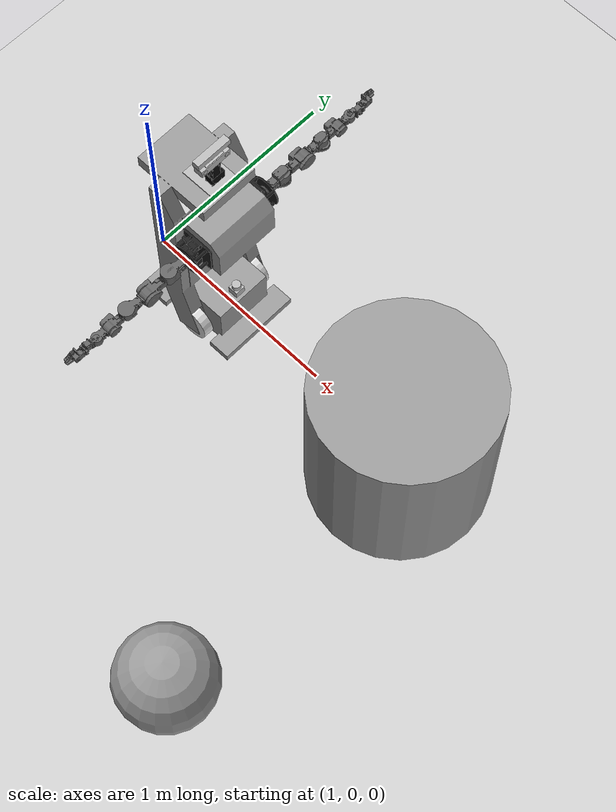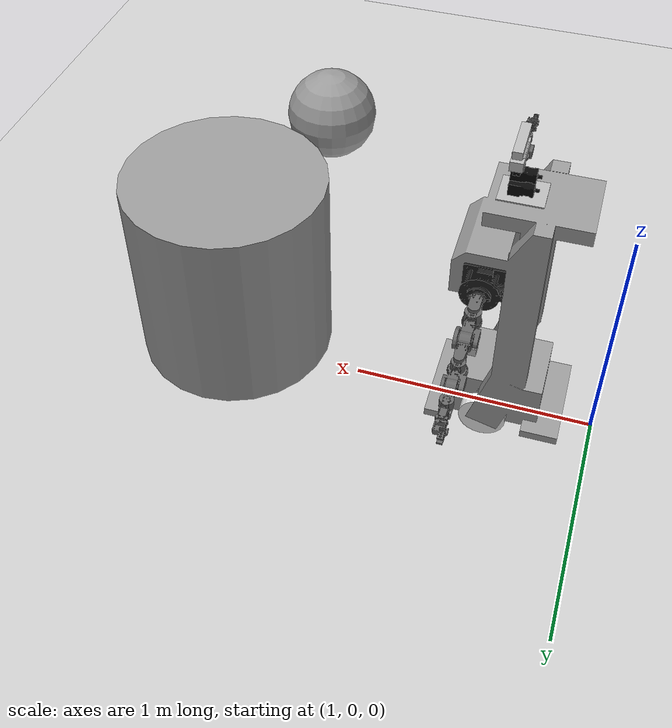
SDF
<sdf version="1.6">
 <world name="default">
  <light name="sun" type="directional">
   <pose>0 0 10 0 -0 0</pose>
   <diffuse>0.8 0.8 0.8 1</diffuse>
   <specular>0.2 0.2 0.2 1</specular>
   <attenuation>
    <range>1000</range>
    <constant>0.9</constant>
    <linear>0.01</linear>
    <quadratic>0.001</quadratic>
   </attenuation>
   <direction>-0.5 0.1 -0.9</direction>
  </light>
  <model name="ground_plane">
   <static>1</static>
   <link name="link">
    <collision name="collision">
     <geometry><plane><normal>0 0 1</normal><size>100 100</size></plane></geometry>
     <surface>
      <contact><collide_bitmask>65535</collide_bitmask></contact>
      <friction><ode><mu>100</mu><mu2>50</mu2></ode></friction>
     </surface>
    </collision>
    <visual name="visual">
     <cast_shadows>0</cast_shadows>
     <geometry><plane><normal>0 0 1</normal><size>100 100</size></plane></geometry>
     <material>
      <script><uri>file://media/materials/scripts/gazebo.material</uri><name>Gazebo/Grey</name></script>
     </material>
    </visual>
   </link>
  </model>
  <gravity>0 0 -9.8</gravity>
  <magnetic_field>6e-06 2.3e-05 -4.2e-05</magnetic_field>
  <atmosphere type="adiabatic"/>
  <physics name="default_physics" default="0" type="ode">
   <max_step_size>0.001</max_step_size>
   <real_time_factor>1</real_time_factor>
   <real_time_update_rate>1000</real_time_update_rate>
  </physics>
  <scene><ambient>0.4 0.4 0.4 1</ambient><background>0.7 0.7 0.7 1</background><shadows>1</shadows></scene>
  <spherical_coordinates>
   <surface_model>EARTH_WGS84</surface_model>
   <latitude_deg>0</latitude_deg>
   <longitude_deg>0</longitude_deg>
   <elevation>0</elevation>
   <heading_deg>0</heading_deg>
  </spherical_coordinates>
  <model name="phoebe">
   <link name="base_link">
    <inertial>
     <pose>-0.030986 0 0.583426 0 -0 0</pose>
     <mass>13.2871</mass>
     <inertia>
      <ixx>1.57998</ixx>
      <ixy>7.56683e-09</ixy>
      <ixz>-0.0224516</ixz>
      <iyy>1.63787</iyy>
      <iyz>0</iyz>
      <izz>0.44973</izz>
     </inertia>
    </inertial>
    <collision name="base_link_collision">
     <geometry>
      <mesh>
       <scale>1 1 1</scale>
       <uri>/home/qasim/catkin_ws/src/mypb-robot/pb-robot/phoebe_description/meshes/phoebe.dae</uri>
      </mesh>
     </geometry>
     <surface>
      <contact><ode><kp>1e+13</kp><kd>1</kd></ode></contact>
      <friction><ode><mu>1</mu><mu2>10</mu2></ode></friction>
     </surface>
    </collision>
    <collision name="base_link_fixed_joint_lump__hokuyo_link_collision_1">
     <pose>0.1 0 0.3 0 -0 0</pose>
     <geometry><cylinder><length>0.0265</length><radius>0.021</radius></cylinder></geometry>
    </collision>
    <collision name="base_link_fixed_joint_lump__hokuyo_link_collision_2">
     <pose>0.1 0 0.253 0 -0 0</pose>
     <geometry><box><size>0.05 0.05 0.041</size></box></geometry>
    </collision>
    <collision name="base_link_fixed_joint_lump__left_arm_base_link_collision_3">
     <pose>0.0555 0.209 0.8 1.57079 1.57079 3.14159</pose>
     <geometry><box><size>0.154 0.177 0.094</size></box></geometry>
     <surface>
      <contact><ode><kp>1e+13</kp><kd>1</kd></ode></contact>
      <friction><ode><mu>1</mu><mu2>10</mu2></ode></friction>
     </surface>
    </collision>
    <collision name="base_link_fixed_joint_lump__ptu_pan_link_collision_4">
     <pose>0.02 0.0115 1.1595 0 -0 0</pose>
     <geometry><box><size>0.154 0.177 0.094</size></box></geometry>
    </collision>
    <collision name="base_link_fixed_joint_lump__right_arm_base_link_collision_5">
     <pose>0.0555 -0.209 0.8 -1.57079 -1.57079 3.14159</pose>
     <geometry><box><size>0.154 0.177 0.094</size></box></geometry>
     <surface>
      <contact><ode><kp>1e+13</kp><kd>1</kd></ode></contact>
      <friction><ode><mu>1</mu><mu2>10</mu2></ode></friction>
     </surface>
    </collision>
    <visual name="base_link_visual">
     <geometry>
      <mesh>
       <scale>1 1 1</scale>
       <uri>/home/qasim/catkin_ws/src/mypb-robot/pb-robot/phoebe_description/meshes/phoebe.dae</uri>
      </mesh>
     </geometry>
     <material>
      <script><name>Gazebo/Grey</name><uri>file://media/materials/scripts/gazebo.material</uri></script>
     </material>
    </visual>
    <visual name="base_link_fixed_joint_lump__hokuyo_link_visual_1">
     <pose>0.1 0 0.3 0 -0 0</pose>
     <geometry><cylinder><length>0.0265</length><radius>0.021</radius></cylinder></geometry>
     <material><script><uri>__default__</uri><name>__default__</name></script></material>
    </visual>
    <visual name="base_link_fixed_joint_lump__hokuyo_link_visual_2">
     <pose>0.1 0 0.266 0 -0 0</pose>
     <geometry><box><size>0.05 0.05 0.041</size></box></geometry>
     <material><script><uri>__default__</uri><name>__default__</name></script></material>
    </visual>
    <visual name="base_link_fixed_joint_lump__left_arm_base_link_visual_3">
     <pose>0.067 0.162 0.8 1.57079 1.57079 3.14159</pose>
     <geometry>
      <mesh>
       <scale>1 1 1</scale>
       <uri>/home/qasim/catkin_ws/src/cyton_gamma_1500_description/meshes/base.dae</uri>
      </mesh>
     </geometry>
     <material>
      <script><name>Gazebo/Black</name><uri>file://media/materials/scripts/gazebo.material</uri></script>
     </material>
    </visual>
    <visual name="base_link_fixed_joint_lump__ptu_base_plate_link_visual_4">
     <pose>-0.015 0 1.11 0 -0 0</pose>
     <geometry><box><size>0.17 0.142 0.005</size></box></geometry>
    </visual>
    <visual name="base_link_fixed_joint_lump__ptu_pan_link_visual_5">
     <pose>0.02 0 1.1375 0 -0 0</pose>
     <geometry>
      <mesh>
       <scale>1 1 1</scale>
       <uri>/home/qasim/catkin_ws/src/mypb-robot/pb-robot/dp_ptu_46_description/meshes/pan.dae</uri>
      </mesh>
     </geometry>
    </visual>
    <visual name="base_link_fixed_joint_lump__right_arm_base_link_visual_6">
     <pose>0.067 -0.162 0.8 -1.57079 -1.57079 3.14159</pose>
     <geometry>
      <mesh>
       <scale>1 1 1</scale>
       <uri>/home/qasim/catkin_ws/src/cyton_gamma_1500_description/meshes/base.dae</uri>
      </mesh>
     </geometry>
     <material>
      <script><name>Gazebo/Black</name><uri>file://media/materials/scripts/gazebo.material</uri></script>
     </material>
    </visual>
    <sensor name="head_hokuyo_sensor" type="ray">
     <visualize>0</visualize>
     <update_rate>20</update_rate>
     <ray>
      <scan>
       <horizontal>
        <samples>720</samples>
        <resolution>1</resolution>
        <min_angle>-1.5708</min_angle>
        <max_angle>1.5708</max_angle>
       </horizontal>
       <vertical><samples>1</samples><min_angle>0</min_angle><max_angle>0</max_angle></vertical>
      </scan>
      <range><min>0.1</min><max>30</max><resolution>0.01</resolution></range>
      <noise><type>gaussian</type><mean>0</mean><stddev>0.01</stddev></noise>
     </ray>
     <plugin name="gazebo_ros_head_hokuyo_controller" filename="libgazebo_ros_laser.so">
      <topicName>/phoebe/laser/scan</topicName>
      <frameName>hokuyo_link</frameName>
      <robotNamespace>/</robotNamespace>
     </plugin>
     <pose>0.1 0 0.3 0 -0 0</pose>
    </sensor>
   </link>
   <link name="left_arm_shoulder_roll">
    <pose>0.067 0.21515 0.8 1.57079 1.57079 3.14159</pose>
    <inertial>
     <pose>0 0 0.12 0 -0 0</pose>
     <mass>0.468571</mass>
     <inertia><ixx>0.00047</ixx><ixy>0</ixy><ixz>0</ixz><iyy>0.00057</iyy><iyz>0</iyz><izz>0.00057</izz></inertia>
    </inertial>
    <collision name="left_arm_shoulder_roll_collision">
     <pose>0 0.069 0.0587 0 -0 0</pose>
     <geometry><box><size>0.09829 0.18143 0.08392</size></box></geometry>
    </collision>
    <visual name="left_arm_shoulder_roll_visual">
     <pose>0 0 0 1.5708 -0 0.384</pose>
     <geometry>
      <mesh>
       <scale>1 1 1</scale>
       <uri>/home/qasim/catkin_ws/src/cyton_gamma_1500_description/meshes/shoulder_roll.dae</uri>
      </mesh>
     </geometry>
    </visual>
   </link>
   <joint name="left_arm_shoulder_roll_joint" type="revolute">
    <child>left_arm_shoulder_roll</child>
    <parent>base_link</parent>
    <axis>
     <xyz>-4e-06 1 0</xyz>
     <limit><lower>-2.618</lower><upper>2.618</upper><effort>100</effort><velocity>1</velocity></limit>
     <dynamics><spring_reference>0</spring_reference><spring_stiffness>0</spring_stiffness></dynamics>
     <use_parent_model_frame>1</use_parent_model_frame>
    </axis>
   </joint>
   <link name="left_arm_shoulder_pitch">
    <pose>0.066999 0.3395 0.7795 1.57079 1.57079 3.14159</pose>
    <inertial>
     <mass>0.428571</mass>
     <inertia><ixx>0.00049</ixx><ixy>0</ixy><ixz>0</ixz><iyy>0.00038</iyy><iyz>0</iyz><izz>0.00049</izz></inertia>
    </inertial>
    <collision name="left_arm_shoulder_pitch_collision">
     <pose>-0.02 0 0 0 -0 0</pose>
     <geometry><sphere><radius>0.055</radius></sphere></geometry>
    </collision>
    <visual name="left_arm_shoulder_pitch_visual">
     <pose>0 0 0 1.5708 -0 0</pose>
     <geometry>
      <mesh>
       <scale>1 1 1</scale>
       <uri>/home/qasim/catkin_ws/src/cyton_gamma_1500_description/meshes/shoulder_pitch.dae</uri>
      </mesh>
     </geometry>
    </visual>
   </link>
   <joint name="left_arm_shoulder_pitch_joint" type="revolute">
    <child>left_arm_shoulder_pitch</child>
    <parent>left_arm_shoulder_roll</parent>
    <axis>
     <xyz>-4e-06 0 -1</xyz>
     <limit><lower>-1.8326</lower><upper>1.8326</upper><effort>100</effort><velocity>1</velocity></limit>
     <dynamics><spring_reference>0</spring_reference><spring_stiffness>0</spring_stiffness></dynamics>
     <use_parent_model_frame>1</use_parent_model_frame>
    </axis>
   </joint>
   <link name="left_arm_shoulder_yaw">
    <pose>0.087499 0.465 0.801 1.57079 1.57079 3.14159</pose>
    <inertial>
     <mass>0.408571</mass>
     <inertia><ixx>0.00028</ixx><ixy>0</ixy><ixz>0</ixz><iyy>0.00038</iyy><iyz>0</iyz><izz>0.00038</izz></inertia>
    </inertial>
    <collision name="left_arm_shoulder_yaw_collision">
     <pose>-0.002 0.02 -0.01 0 -0 0</pose>
     <geometry><sphere><radius>0.055</radius></sphere></geometry>
    </collision>
    <visual name="left_arm_shoulder_yaw_visual">
     <pose>0 0 0 1.5708 0 -1.5708</pose>
     <geometry>
      <mesh>
       <scale>1 1 1</scale>
       <uri>/home/qasim/catkin_ws/src/cyton_gamma_1500_description/meshes/shoulder_yaw.dae</uri>
      </mesh>
     </geometry>
    </visual>
   </link>
   <joint name="left_arm_shoulder_yaw_joint" type="revolute">
    <child>left_arm_shoulder_yaw</child>
    <parent>left_arm_shoulder_pitch</parent>
    <axis>
     <xyz>1 4e-06 -4e-06</xyz>
     <limit><lower>-1.8326</lower><upper>1.8326</upper><effort>100</effort><velocity>1</velocity></limit>
     <dynamics><spring_reference>0</spring_reference><spring_stiffness>0</spring_stiffness></dynamics>
     <use_parent_model_frame>1</use_parent_model_frame>
    </axis>
   </joint>
   <link name="left_arm_elbow_pitch">
    <pose>0.066898 0.5808 0.783 1.57079 1.57079 3.14159</pose>
    <inertial>
     <mass>0.388671</mass>
     <inertia><ixx>0.00023</ixx><ixy>0</ixy><ixz>0</ixz><iyy>0.00016</iyy><iyz>0</iyz><izz>0.00023</izz></inertia>
    </inertial>
    <collision name="left_arm_elbow_pitch_collision">
     <pose>-0.022 0 -0.006 0 -0 0</pose>
     <geometry><sphere><radius>0.055</radius></sphere></geometry>
    </collision>
    <visual name="left_arm_elbow_pitch_visual">
     <pose>0 0 0 1.5708 -0 -3.14159</pose>
     <geometry>
      <mesh>
       <scale>1 1 1</scale>
       <uri>/home/qasim/catkin_ws/src/cyton_gamma_1500_description/meshes/elbow_pitch.dae</uri>
      </mesh>
     </geometry>
    </visual>
   </link>
   <joint name="left_arm_elbow_pitch_joint" type="revolute">
    <child>left_arm_elbow_pitch</child>
    <parent>left_arm_shoulder_yaw</parent>
    <axis>
     <xyz>-4e-06 0 -1</xyz>
     <limit><lower>-1.8326</lower><upper>1.8326</upper><effort>100</effort><velocity>1</velocity></limit>
     <dynamics><spring_reference>0</spring_reference><spring_stiffness>0</spring_stiffness></dynamics>
     <use_parent_model_frame>1</use_parent_model_frame>
    </axis>
   </joint>
   <link name="left_arm_elbow_yaw">
    <pose>0.084898 0.67826 0.8001 1.57079 1.57079 3.14159</pose>
    <inertial>
     <mass>0.368871</mass>
     <inertia>
      <ixx>0.00010686</ixx>
      <ixy>0</ixy>
      <ixz>0</ixz>
      <iyy>0.00011187</iyy>
      <iyz>0</iyz>
      <izz>0.00011187</izz>
     </inertia>
    </inertial>
    <collision name="left_arm_elbow_yaw_collision">
     <pose>0 0.025 0 0 -0 0</pose>
     <geometry><sphere><radius>0.05</radius></sphere></geometry>
    </collision>
    <visual name="left_arm_elbow_yaw_visual">
     <pose>0 0 0 1.5708 -0 1.5708</pose>
     <geometry>
      <mesh>
       <scale>1 1 1</scale>
       <uri>/home/qasim/catkin_ws/src/cyton_gamma_1500_description/meshes/elbow_yaw.dae</uri>
      </mesh>
     </geometry>
    </visual>
   </link>
   <joint name="left_arm_elbow_yaw_joint" type="revolute">
    <child>left_arm_elbow_yaw</child>
    <parent>left_arm_elbow_pitch</parent>
    <axis>
     <xyz>1 4e-06 -4e-06</xyz>
     <limit><lower>-1.8326</lower><upper>1.8326</upper><effort>100</effort><velocity>1</velocity></limit>
     <dynamics><spring_reference>0</spring_reference><spring_stiffness>0</spring_stiffness></dynamics>
     <use_parent_model_frame>1</use_parent_model_frame>
    </axis>
   </joint>
   <link name="left_arm_wrist_pitch">
    <pose>0.066898 0.75006 0.77384 1.57079 1.57079 3.14159</pose>
    <inertial>
     <mass>0.008</mass>
     <inertia>
      <ixx>3.3349e-07</ixx>
      <ixy>0</ixy>
      <ixz>0</ixz>
      <iyy>1.403e-06</iyy>
      <iyz>0</iyz>
      <izz>1.70319e-06</izz>
     </inertia>
    </inertial>
    <collision name="left_arm_wrist_pitch_collision">
     <pose>-0.02 0 0 0 -0 0</pose>
     <geometry><box><size>0.07 0.06 0.11</size></box></geometry>
    </collision>
    <visual name="left_arm_wrist_pitch_visual">
     <pose>0 0 0 1.5708 -0 1.5708</pose>
     <geometry>
      <mesh>
       <scale>1 1 1</scale>
       <uri>/home/qasim/catkin_ws/src/cyton_gamma_1500_description/meshes/wrist_pitch.dae</uri>
      </mesh>
     </geometry>
    </visual>
   </link>
   <joint name="left_arm_wrist_pitch_joint" type="revolute">
    <child>left_arm_wrist_pitch</child>
    <parent>left_arm_elbow_yaw</parent>
    <axis>
     <xyz>4e-06 0 1</xyz>
     <limit><lower>-1.8326</lower><upper>1.8326</upper><effort>100</effort><velocity>1</velocity></limit>
     <dynamics><spring_reference>0</spring_reference><spring_stiffness>0</spring_stiffness></dynamics>
     <use_parent_model_frame>1</use_parent_model_frame>
    </axis>
   </joint>
   <link name="left_arm_wrist_roll">
    <pose>0.066898 0.801485 0.800095 1.57079 1.57079 3.14159</pose>
    <inertial>
     <mass>0.38</mass>
     <inertia>
      <ixx>0.00036</ixx>
      <ixy>0</ixy>
      <ixz>0</ixz>
      <iyy>0.00036</iyy>
      <iyz>0</iyz>
      <izz>0.0001487</izz>
     </inertia>
    </inertial>
    <collision name="left_arm_wrist_roll_collision">
     <pose>0 0.008 0.04 0 -0 0</pose>
     <geometry><box><size>0.08 0.06 0.08</size></box></geometry>
    </collision>
    <visual name="left_arm_wrist_roll_visual">
     <pose>0 0 0 -3.14159 -0 -1.5708</pose>
     <geometry>
      <mesh>
       <scale>1 1 1</scale>
       <uri>/home/qasim/catkin_ws/src/cyton_gamma_1500_description/meshes/wrist_roll.dae</uri>
      </mesh>
     </geometry>
    </visual>
    <visual name="left_arm_wrist_roll_fixed_joint_lump__left_arm_virtual_endeffector_visual_1">
     <pose>-0.002316 0.0079 0.079425 0 -0 0</pose>
     <geometry><sphere><radius>0.002</radius></sphere></geometry>
    </visual>
   </link>
   <joint name="left_arm_wrist_roll_joint" type="revolute">
    <child>left_arm_wrist_roll</child>
    <parent>left_arm_wrist_pitch</parent>
    <axis>
     <xyz>-4e-06 1 0</xyz>
     <limit><lower>-2.61799</lower><upper>2.61799</upper><effort>100</effort><velocity>1</velocity></limit>
     <dynamics><spring_reference>0</spring_reference><spring_stiffness>0</spring_stiffness></dynamics>
     <use_parent_model_frame>1</use_parent_model_frame>
    </axis>
   </joint>
   <link name="left_arm_gripper_finger1">
    <pose>0.062047 0.87871 0.813405 1.57079 1.57079 3.14159</pose>
    <inertial>
     <mass>0.035</mass>
     <inertia>
      <ixx>4.5064e-06</ixx>
      <ixy>0</ixy>
      <ixz>0</ixz>
      <iyy>3.6723e-06</iyy>
      <iyz>0</iyz>
      <izz>2.0929e-06</izz>
     </inertia>
    </inertial>
    <collision name="left_arm_gripper_finger1_collision">
     <pose>0 0.008 0.04 0 -0 0</pose>
     <geometry><box><size>0.015 0.0229 0.0475</size></box></geometry>
    </collision>
    <visual name="left_arm_gripper_finger1_visual">
     <geometry>
      <mesh>
       <scale>1 1 1</scale>
       <uri>/home/qasim/catkin_ws/src/cyton_gamma_1500_description/meshes/gripper_finger1.dae</uri>
      </mesh>
     </geometry>
    </visual>
   </link>
   <joint name="left_arm_gripper_joint" type="prismatic">
    <child>left_arm_gripper_finger1</child>
    <parent>left_arm_wrist_roll</parent>
    <axis>
     <xyz>-4e-06 0 -1</xyz>
     <limit><lower>-0.008</lower><upper>0.008</upper><effort>100</effort><velocity>1</velocity></limit>
     <dynamics><spring_reference>0</spring_reference><spring_stiffness>0</spring_stiffness></dynamics>
     <use_parent_model_frame>1</use_parent_model_frame>
    </axis>
   </joint>
   <link name="left_arm_gripper_finger2">
    <pose>0.062047 0.87871 0.790295 1.57079 1.57079 3.14159</pose>
    <inertial>
     <mass>0.035</mass>
     <inertia>
      <ixx>4.5064e-06</ixx>
      <ixy>0</ixy>
      <ixz>0</ixz>
      <iyy>3.6723e-06</iyy>
      <iyz>0</iyz>
      <izz>2.0929e-06</izz>
     </inertia>
    </inertial>
    <collision name="left_arm_gripper_finger2_collision">
     <pose>0 0.008 0.04 0 -0 0</pose>
     <geometry><box><size>0.015 0.0229 0.0475</size></box></geometry>
    </collision>
    <visual name="left_arm_gripper_finger2_visual">
     <geometry>
      <mesh>
       <scale>1 1 1</scale>
       <uri>/home/qasim/catkin_ws/src/cyton_gamma_1500_description/meshes/gripper_finger2.dae</uri>
      </mesh>
     </geometry>
    </visual>
   </link>
   <joint name="left_arm_gripper_joint2" type="prismatic">
    <child>left_arm_gripper_finger2</child>
    <parent>left_arm_wrist_roll</parent>
    <axis>
     <xyz>-4e-06 0 -1</xyz>
     <limit><lower>-0.008</lower><upper>0.008</upper><effort>100</effort><velocity>1</velocity></limit>
     <dynamics><spring_reference>0</spring_reference><spring_stiffness>0</spring_stiffness></dynamics>
     <use_parent_model_frame>1</use_parent_model_frame>
    </axis>
   </joint>
   <link name="ptu_tilt_link">
    <pose>0.01564 -0.0067 1.1375 0 -0 0</pose>
    <inertial>
     <pose>-0.03 0 0.05 0 -0 0</pose>
     <mass>0.13</mass>
     <inertia>
      <ixx>7.6006e-05</ixx>
      <ixy>0</ixy>
      <ixz>0</ixz>
      <iyy>0.00017252</iyy>
      <iyz>0</iyz>
      <izz>0.00014136</izz>
     </inertia>
    </inertial>
    <collision name="ptu_tilt_link_collision">
     <pose>0 0.0115 0.047 0 -0 0</pose>
     <geometry><box><size>0.154 0.177 0.094</size></box></geometry>
    </collision>
    <visual name="ptu_tilt_link_visual">
     <pose>0.00436 0.0067 0 0 -0 0</pose>
     <geometry>
      <mesh>
       <scale>1 1 1</scale>
       <uri>/home/qasim/catkin_ws/src/mypb-robot/pb-robot/dp_ptu_46_description/meshes/tilt.dae</uri>
      </mesh>
     </geometry>
    </visual>
   </link>
   <joint name="ptu_pan_joint" type="revolute">
    <child>ptu_tilt_link</child>
    <parent>base_link</parent>
    <axis>
     <xyz>0 0 1</xyz>
     <limit><lower>-2.775</lower><upper>2.775</upper><effort>100</effort><velocity>1</velocity></limit>
     <dynamics><spring_reference>0</spring_reference><spring_stiffness>0</spring_stiffness></dynamics>
     <use_parent_model_frame>1</use_parent_model_frame>
    </axis>
   </joint>
   <link name="ptu_mount_link">
    <pose>0.01564 -0.0067 1.2034 0 -0 0</pose>
    <inertial>
     <pose>0 0 0.091674 0 -0 0</pose>
     <mass>0.882</mass>
     <inertia>
      <ixx>0.00288283</ixx>
      <ixy>0</ixy>
      <ixz>0</ixz>
      <iyy>0.000838398</iyy>
      <iyz>0</iyz>
      <izz>0.00227653</izz>
     </inertia>
    </inertial>
    <collision name="ptu_mount_link_collision">
     <pose>0 0.0115 0.047 0 -0 0</pose>
     <geometry><box><size>0.154 0.177 0.094</size></box></geometry>
    </collision>
    <visual name="ptu_mount_link_visual">
     <pose>0.00436 0.0067 -0.0659 0 -0 0</pose>
     <geometry>
      <mesh>
       <scale>1 1 1</scale>
       <uri>/home/qasim/catkin_ws/src/mypb-robot/pb-robot/dp_ptu_46_description/meshes/mount.dae</uri>
      </mesh>
     </geometry>
    </visual>
    <visual name="ptu_mount_link_fixed_joint_lump__bumblebee_link_visual_1">
     <pose>0 0 0.058 0 -0 0</pose>
     <geometry><box><size>0.047 0.157 0.038</size></box></geometry>
    </visual>
    <visual name="ptu_mount_link_fixed_joint_lump__bumblebee_cameras_link_visual_2">
     <pose>0.024 0.06 0.058 3.14159 1.57079 3.14159</pose>
     <geometry><cylinder><length>0.001</length><radius>0.011</radius></cylinder></geometry>
    </visual>
    <visual name="ptu_mount_link_fixed_joint_lump__bumblebee_cameras_link_visual_3">
     <pose>0.024 -0.06 0.058 3.14159 1.57079 3.14159</pose>
     <geometry><cylinder><length>0.001</length><radius>0.011</radius></cylinder></geometry>
    </visual>
    <visual name="ptu_mount_link_fixed_joint_lump__xtion_link_visual_4">
     <pose>0 0 0.113 0 -0 0</pose>
     <geometry><box><size>0.036 0.178 0.03</size></box></geometry>
     <material><script><uri>__default__</uri><name>__default__</name></script></material>
    </visual>
    <visual name="ptu_mount_link_fixed_joint_lump__xtion_link_visual_5">
     <pose>0 0 0.088 0 -0 0</pose>
     <geometry><box><size>0.02 0.017 0.02</size></box></geometry>
     <material><script><uri>__default__</uri><name>__default__</name></script></material>
    </visual>
    <visual name="ptu_mount_link_fixed_joint_lump__xtion_link_visual_6">
     <pose>0 0 0.078 0 -0 0</pose>
     <geometry><box><size>0.04 0.1 0.004</size></box></geometry>
     <material><script><uri>__default__</uri><name>__default__</name></script></material>
    </visual>
    <sensor name="xtion_link_camera" type="depth">
     <update_rate>30</update_rate>
     <camera name="__default__">
      <horizontal_fov>1.01229</horizontal_fov>
      <image><width>640</width><height>480</height><format>R8G8B8</format></image>
      <clip><near>0.08</near><far>3.5</far></clip>
     </camera>
     <plugin name="xtion_link_controller" filename="libgazebo_ros_openni_kinect.so">
      <baseline>0.2</baseline>
      <alwaysOn>true</alwaysOn>
      <updateRate>0.0</updateRate>
      <cameraName>xtion_ir</cameraName>
      <imageTopicName>/phoebe/color/image_raw</imageTopicName>
      <cameraInfoTopicName>/phoebe/color/camera_info</cameraInfoTopicName>
      <depthImageTopicName>/phoebe/depth/image_raw</depthImageTopicName>
      <depthImageInfoTopicName>/phoebe/depth/camera_info</depthImageInfoTopicName>
      <pointCloudTopicName>/phoebe/depth/points</pointCloudTopicName>
      <frameName>xtion_link</frameName>
      <pointCloudCutoff>0.5</pointCloudCutoff>
      <pointCloudCutoffMax>3.0</pointCloudCutoffMax>
      <distortionK1>0.00000001</distortionK1>
      <distortionK2>0.00000001</distortionK2>
      <distortionK3>0.00000001</distortionK3>
      <distortionT1>0.00000001</distortionT1>
      <distortionT2>0.00000001</distortionT2>
      <CxPrime>0</CxPrime>
      <Cx>0</Cx>
      <Cy>0</Cy>
      <focalLength>0</focalLength>
      <hackBaseline>0</hackBaseline>
      <robotNamespace>/</robotNamespace>
     </plugin>
     <pose>0 0 0.113 0 -0 0</pose>
    </sensor>
   </link>
   <joint name="ptu_tilt_joint" type="revolute">
    <child>ptu_mount_link</child>
    <parent>ptu_tilt_link</parent>
    <axis>
     <xyz>0 -1 0</xyz>
     <limit><lower>-1.396</lower><upper>0.541</upper><effort>100</effort><velocity>1</velocity></limit>
     <dynamics><spring_reference>0</spring_reference><spring_stiffness>0</spring_stiffness></dynamics>
     <use_parent_model_frame>1</use_parent_model_frame>
    </axis>
   </joint>
   <link name="right_arm_shoulder_roll">
    <pose>0.067 -0.21515 0.8 -1.57079 -1.57079 3.14159</pose>
    <inertial>
     <pose>0 0 0.12 0 -0 0</pose>
     <mass>0.468571</mass>
     <inertia><ixx>0.00047</ixx><ixy>0</ixy><ixz>0</ixz><iyy>0.00057</iyy><iyz>0</iyz><izz>0.00057</izz></inertia>
    </inertial>
    <collision name="right_arm_shoulder_roll_collision">
     <pose>0 0.069 0.0587 0 -0 0</pose>
     <geometry><box><size>0.09829 0.18143 0.08392</size></box></geometry>
    </collision>
    <visual name="right_arm_shoulder_roll_visual">
     <pose>0 0 0 1.5708 -0 0.384</pose>
     <geometry>
      <mesh>
       <scale>1 1 1</scale>
       <uri>/home/qasim/catkin_ws/src/cyton_gamma_1500_description/meshes/shoulder_roll.dae</uri>
      </mesh>
     </geometry>
    </visual>
   </link>
   <joint name="right_arm_shoulder_roll_joint" type="revolute">
    <child>right_arm_shoulder_roll</child>
    <parent>base_link</parent>
    <axis>
     <xyz>4e-06 -1 0</xyz>
     <limit><lower>-2.618</lower><upper>2.618</upper><effort>100</effort><velocity>1</velocity></limit>
     <dynamics><spring_reference>0</spring_reference><spring_stiffness>0</spring_stiffness></dynamics>
     <use_parent_model_frame>1</use_parent_model_frame>
    </axis>
   </joint>
   <link name="right_arm_shoulder_pitch">
    <pose>0.067001 -0.3395 0.8205 -1.57079 -1.57079 3.14159</pose>
    <inertial>
     <mass>0.428571</mass>
     <inertia><ixx>0.00049</ixx><ixy>0</ixy><ixz>0</ixz><iyy>0.00038</iyy><iyz>0</iyz><izz>0.00049</izz></inertia>
    </inertial>
    <collision name="right_arm_shoulder_pitch_collision">
     <pose>-0.02 0 0 0 -0 0</pose>
     <geometry><sphere><radius>0.055</radius></sphere></geometry>
    </collision>
    <visual name="right_arm_shoulder_pitch_visual">
     <pose>0 0 0 1.5708 -0 0</pose>
     <geometry>
      <mesh>
       <scale>1 1 1</scale>
       <uri>/home/qasim/catkin_ws/src/cyton_gamma_1500_description/meshes/shoulder_pitch.dae</uri>
      </mesh>
     </geometry>
    </visual>
   </link>
   <joint name="right_arm_shoulder_pitch_joint" type="revolute">
    <child>right_arm_shoulder_pitch</child>
    <parent>right_arm_shoulder_roll</parent>
    <axis>
     <xyz>-4e-06 0 1</xyz>
     <limit><lower>-1.8326</lower><upper>1.8326</upper><effort>100</effort><velocity>1</velocity></limit>
     <dynamics><spring_reference>0</spring_reference><spring_stiffness>0</spring_stiffness></dynamics>
     <use_parent_model_frame>1</use_parent_model_frame>
    </axis>
   </joint>
   <link name="right_arm_shoulder_yaw">
    <pose>0.087501 -0.465 0.799 -1.57079 -1.57079 3.14159</pose>
    <inertial>
     <mass>0.408571</mass>
     <inertia><ixx>0.00028</ixx><ixy>0</ixy><ixz>0</ixz><iyy>0.00038</iyy><iyz>0</iyz><izz>0.00038</izz></inertia>
    </inertial>
    <collision name="right_arm_shoulder_yaw_collision">
     <pose>-0.002 0.02 -0.01 0 -0 0</pose>
     <geometry><sphere><radius>0.055</radius></sphere></geometry>
    </collision>
    <visual name="right_arm_shoulder_yaw_visual">
     <pose>0 0 0 1.5708 0 -1.5708</pose>
     <geometry>
      <mesh>
       <scale>1 1 1</scale>
       <uri>/home/qasim/catkin_ws/src/cyton_gamma_1500_description/meshes/shoulder_yaw.dae</uri>
      </mesh>
     </geometry>
    </visual>
   </link>
   <joint name="right_arm_shoulder_yaw_joint" type="revolute">
    <child>right_arm_shoulder_yaw</child>
    <parent>right_arm_shoulder_pitch</parent>
    <axis>
     <xyz>1 4e-06 4e-06</xyz>
     <limit><lower>-1.8326</lower><upper>1.8326</upper><effort>100</effort><velocity>1</velocity></limit>
     <dynamics><spring_reference>0</spring_reference><spring_stiffness>0</spring_stiffness></dynamics>
     <use_parent_model_frame>1</use_parent_model_frame>
    </axis>
   </joint>
   <link name="right_arm_elbow_pitch">
    <pose>0.066902 -0.5808 0.817 -1.57079 -1.57079 3.14159</pose>
    <inertial>
     <mass>0.388671</mass>
     <inertia><ixx>0.00023</ixx><ixy>0</ixy><ixz>0</ixz><iyy>0.00016</iyy><iyz>0</iyz><izz>0.00023</izz></inertia>
    </inertial>
    <collision name="right_arm_elbow_pitch_collision">
     <pose>-0.022 0 -0.006 0 -0 0</pose>
     <geometry><sphere><radius>0.055</radius></sphere></geometry>
    </collision>
    <visual name="right_arm_elbow_pitch_visual">
     <pose>0 0 0 1.5708 -0 -3.14159</pose>
     <geometry>
      <mesh>
       <scale>1 1 1</scale>
       <uri>/home/qasim/catkin_ws/src/cyton_gamma_1500_description/meshes/elbow_pitch.dae</uri>
      </mesh>
     </geometry>
    </visual>
   </link>
   <joint name="right_arm_elbow_pitch_joint" type="revolute">
    <child>right_arm_elbow_pitch</child>
    <parent>right_arm_shoulder_yaw</parent>
    <axis>
     <xyz>-4e-06 0 1</xyz>
     <limit><lower>-1.8326</lower><upper>1.8326</upper><effort>100</effort><velocity>1</velocity></limit>
     <dynamics><spring_reference>0</spring_reference><spring_stiffness>0</spring_stiffness></dynamics>
     <use_parent_model_frame>1</use_parent_model_frame>
    </axis>
   </joint>
   <link name="right_arm_elbow_yaw">
    <pose>0.084902 -0.67826 0.7999 -1.57079 -1.57079 3.14159</pose>
    <inertial>
     <mass>0.368871</mass>
     <inertia>
      <ixx>0.00010686</ixx>
      <ixy>0</ixy>
      <ixz>0</ixz>
      <iyy>0.00011187</iyy>
      <iyz>0</iyz>
      <izz>0.00011187</izz>
     </inertia>
    </inertial>
    <collision name="right_arm_elbow_yaw_collision">
     <pose>0 0.025 0 0 -0 0</pose>
     <geometry><sphere><radius>0.05</radius></sphere></geometry>
    </collision>
    <visual name="right_arm_elbow_yaw_visual">
     <pose>0 0 0 1.5708 -0 1.5708</pose>
     <geometry>
      <mesh>
       <scale>1 1 1</scale>
       <uri>/home/qasim/catkin_ws/src/cyton_gamma_1500_description/meshes/elbow_yaw.dae</uri>
      </mesh>
     </geometry>
    </visual>
   </link>
   <joint name="right_arm_elbow_yaw_joint" type="revolute">
    <child>right_arm_elbow_yaw</child>
    <parent>right_arm_elbow_pitch</parent>
    <axis>
     <xyz>1 4e-06 4e-06</xyz>
     <limit><lower>-1.8326</lower><upper>1.8326</upper><effort>100</effort><velocity>1</velocity></limit>
     <dynamics><spring_reference>0</spring_reference><spring_stiffness>0</spring_stiffness></dynamics>
     <use_parent_model_frame>1</use_parent_model_frame>
    </axis>
   </joint>
   <link name="right_arm_wrist_pitch">
    <pose>0.066902 -0.75006 0.82616 -1.57079 -1.57079 3.14159</pose>
    <inertial>
     <mass>0.008</mass>
     <inertia>
      <ixx>3.3349e-07</ixx>
      <ixy>0</ixy>
      <ixz>0</ixz>
      <iyy>1.403e-06</iyy>
      <iyz>0</iyz>
      <izz>1.70319e-06</izz>
     </inertia>
    </inertial>
    <collision name="right_arm_wrist_pitch_collision">
     <pose>-0.02 0 0 0 -0 0</pose>
     <geometry><box><size>0.07 0.06 0.11</size></box></geometry>
    </collision>
    <visual name="right_arm_wrist_pitch_visual">
     <pose>0 0 0 1.5708 -0 1.5708</pose>
     <geometry>
      <mesh>
       <scale>1 1 1</scale>
       <uri>/home/qasim/catkin_ws/src/cyton_gamma_1500_description/meshes/wrist_pitch.dae</uri>
      </mesh>
     </geometry>
    </visual>
   </link>
   <joint name="right_arm_wrist_pitch_joint" type="revolute">
    <child>right_arm_wrist_pitch</child>
    <parent>right_arm_elbow_yaw</parent>
    <axis>
     <xyz>4e-06 0 -1</xyz>
     <limit><lower>-1.8326</lower><upper>1.8326</upper><effort>100</effort><velocity>1</velocity></limit>
     <dynamics><spring_reference>0</spring_reference><spring_stiffness>0</spring_stiffness></dynamics>
     <use_parent_model_frame>1</use_parent_model_frame>
    </axis>
   </joint>
   <link name="right_arm_wrist_roll">
    <pose>0.066902 -0.801485 0.799905 -1.57079 -1.57079 3.14159</pose>
    <inertial>
     <mass>0.38</mass>
     <inertia>
      <ixx>0.00036</ixx>
      <ixy>0</ixy>
      <ixz>0</ixz>
      <iyy>0.00036</iyy>
      <iyz>0</iyz>
      <izz>0.0001487</izz>
     </inertia>
    </inertial>
    <collision name="right_arm_wrist_roll_collision">
     <pose>0 0.008 0.04 0 -0 0</pose>
     <geometry><box><size>0.08 0.06 0.08</size></box></geometry>
    </collision>
    <visual name="right_arm_wrist_roll_visual">
     <pose>0 0 0 -3.14159 -0 -1.5708</pose>
     <geometry>
      <mesh>
       <scale>1 1 1</scale>
       <uri>/home/qasim/catkin_ws/src/cyton_gamma_1500_description/meshes/wrist_roll.dae</uri>
      </mesh>
     </geometry>
    </visual>
    <visual name="right_arm_wrist_roll_fixed_joint_lump__right_arm_virtual_endeffector_visual_1">
     <pose>-0.002316 0.0079 0.079425 0 -0 0</pose>
     <geometry><sphere><radius>0.002</radius></sphere></geometry>
    </visual>
   </link>
   <joint name="right_arm_wrist_roll_joint" type="revolute">
    <child>right_arm_wrist_roll</child>
    <parent>right_arm_wrist_pitch</parent>
    <axis>
     <xyz>4e-06 -1 0</xyz>
     <limit><lower>-2.61799</lower><upper>2.61799</upper><effort>100</effort><velocity>1</velocity></limit>
     <dynamics><spring_reference>0</spring_reference><spring_stiffness>0</spring_stiffness></dynamics>
     <use_parent_model_frame>1</use_parent_model_frame>
    </axis>
   </joint>
   <link name="right_arm_gripper_finger1">
    <pose>0.062053 -0.87871 0.786595 -1.57079 -1.57079 3.14159</pose>
    <inertial>
     <mass>0.035</mass>
     <inertia>
      <ixx>4.5064e-06</ixx>
      <ixy>0</ixy>
      <ixz>0</ixz>
      <iyy>3.6723e-06</iyy>
      <iyz>0</iyz>
      <izz>2.0929e-06</izz>
     </inertia>
    </inertial>
    <collision name="right_arm_gripper_finger1_collision">
     <pose>0 0.008 0.04 0 -0 0</pose>
     <geometry><box><size>0.015 0.0229 0.0475</size></box></geometry>
    </collision>
    <visual name="right_arm_gripper_finger1_visual">
     <geometry>
      <mesh>
       <scale>1 1 1</scale>
       <uri>/home/qasim/catkin_ws/src/cyton_gamma_1500_description/meshes/gripper_finger1.dae</uri>
      </mesh>
     </geometry>
    </visual>
   </link>
   <joint name="right_arm_gripper_joint" type="prismatic">
    <child>right_arm_gripper_finger1</child>
    <parent>right_arm_wrist_roll</parent>
    <axis>
     <xyz>-4e-06 0 1</xyz>
     <limit><lower>-0.008</lower><upper>0.008</upper><effort>100</effort><velocity>1</velocity></limit>
     <dynamics><spring_reference>0</spring_reference><spring_stiffness>0</spring_stiffness></dynamics>
     <use_parent_model_frame>1</use_parent_model_frame>
    </axis>
   </joint>
   <link name="right_arm_gripper_finger2">
    <pose>0.062053 -0.87871 0.809705 -1.57079 -1.57079 3.14159</pose>
    <inertial>
     <mass>0.035</mass>
     <inertia>
      <ixx>4.5064e-06</ixx>
      <ixy>0</ixy>
      <ixz>0</ixz>
      <iyy>3.6723e-06</iyy>
      <iyz>0</iyz>
      <izz>2.0929e-06</izz>
     </inertia>
    </inertial>
    <collision name="right_arm_gripper_finger2_collision">
     <pose>0 0.008 0.04 0 -0 0</pose>
     <geometry><box><size>0.015 0.0229 0.0475</size></box></geometry>
    </collision>
    <visual name="right_arm_gripper_finger2_visual">
     <geometry>
      <mesh>
       <scale>1 1 1</scale>
       <uri>/home/qasim/catkin_ws/src/cyton_gamma_1500_description/meshes/gripper_finger2.dae</uri>
      </mesh>
     </geometry>
    </visual>
   </link>
   <joint name="right_arm_gripper_joint2" type="prismatic">
    <child>right_arm_gripper_finger2</child>
    <parent>right_arm_wrist_roll</parent>
    <axis>
     <xyz>-4e-06 0 1</xyz>
     <limit><lower>-0.008</lower><upper>0.008</upper><effort>100</effort><velocity>1</velocity></limit>
     <dynamics><spring_reference>0</spring_reference><spring_stiffness>0</spring_stiffness></dynamics>
     <use_parent_model_frame>1</use_parent_model_frame>
    </axis>
   </joint>
   <link name="wheel_front">
    <pose>0.206 0 0.02 0 -0 0</pose>
    <inertial>
     <mass>0.25</mass>
     <inertia>
      <ixx>0.00123229</ixx>
      <ixy>0</ixy>
      <ixz>0</ixz>
      <iyy>0.00123229</iyy>
      <iyz>0</iyz>
      <izz>0.00225625</izz>
     </inertia>
    </inertial>
    <collision name="wheel_front_collision">
     <pose>0 0 0 -0 1.5707 1.5707</pose>
     <geometry><cylinder><length>0.04</length><radius>0.02</radius></cylinder></geometry>
    </collision>
    <visual name="wheel_front_visual">
     <pose>0 0 0 -0 1.5707 1.5707</pose>
     <geometry><cylinder><length>0.04</length><radius>0.02</radius></cylinder></geometry>
    </visual>
   </link>
   <joint name="wheel_front_joint" type="revolute">
    <child>wheel_front</child>
    <parent>base_link</parent>
    <axis>
     <xyz>0 1 0</xyz>
     <limit><lower>-1e+16</lower><upper>1e+16</upper></limit>
     <dynamics><spring_reference>0</spring_reference><spring_stiffness>0</spring_stiffness></dynamics>
     <use_parent_model_frame>1</use_parent_model_frame>
    </axis>
   </joint>
   <link name="wheel_left">
    <pose>0 0.18 0.095 1.5708 -0 0</pose>
    <inertial>
     <mass>0.5</mass>
     <inertia>
      <ixx>0.00123229</ixx>
      <ixy>0</ixy>
      <ixz>0</ixz>
      <iyy>0.00123229</iyy>
      <iyz>0</iyz>
      <izz>0.00225625</izz>
     </inertia>
    </inertial>
    <collision name="wheel_left_collision">
     <geometry><cylinder><length>0.05</length><radius>0.095</radius></cylinder></geometry>
     <surface>
      <contact><ode><kp>1e+13</kp><kd>1</kd></ode></contact>
      <friction><ode><mu>220</mu><mu2>100</mu2></ode></friction>
     </surface>
    </collision>
    <visual name="wheel_left_visual">
     <geometry><cylinder><length>0.05</length><radius>0.095</radius></cylinder></geometry>
     <material>
      <script><name>Gazebo/White</name><uri>file://media/materials/scripts/gazebo.material</uri></script>
     </material>
    </visual>
   </link>
   <joint name="wheel_left_joint" type="revolute">
    <child>wheel_left</child>
    <parent>base_link</parent>
    <axis>
     <xyz>0 -1 0</xyz>
     <limit><lower>-1e+16</lower><upper>1e+16</upper></limit>
     <dynamics><spring_reference>0</spring_reference><spring_stiffness>0</spring_stiffness></dynamics>
     <use_parent_model_frame>1</use_parent_model_frame>
    </axis>
   </joint>
   <link name="wheel_rear">
    <pose>-0.29 0 0.02 0 -0 0</pose>
    <inertial>
     <mass>0.25</mass>
     <inertia>
      <ixx>0.00123229</ixx>
      <ixy>0</ixy>
      <ixz>0</ixz>
      <iyy>0.00123229</iyy>
      <iyz>0</iyz>
      <izz>0.00225625</izz>
     </inertia>
    </inertial>
    <collision name="wheel_rear_collision">
     <pose>0 0 0 -0 1.5707 1.5707</pose>
     <geometry><cylinder><length>0.04</length><radius>0.02</radius></cylinder></geometry>
    </collision>
    <visual name="wheel_rear_visual">
     <pose>0 0 0 -0 1.5707 1.5707</pose>
     <geometry><cylinder><length>0.04</length><radius>0.02</radius></cylinder></geometry>
    </visual>
   </link>
   <joint name="wheel_rear_joint" type="revolute">
    <child>wheel_rear</child>
    <parent>base_link</parent>
    <axis>
     <xyz>0 1 0</xyz>
     <limit><lower>-1e+16</lower><upper>1e+16</upper></limit>
     <dynamics><spring_reference>0</spring_reference><spring_stiffness>0</spring_stiffness></dynamics>
     <use_parent_model_frame>1</use_parent_model_frame>
    </axis>
   </joint>
   <link name="wheel_right">
    <pose>0 -0.18 0.095 1.5708 -0 0</pose>
    <inertial>
     <mass>0.5</mass>
     <inertia>
      <ixx>0.00123229</ixx>
      <ixy>0</ixy>
      <ixz>0</ixz>
      <iyy>0.00123229</iyy>
      <iyz>0</iyz>
      <izz>0.00225625</izz>
     </inertia>
    </inertial>
    <collision name="wheel_right_collision">
     <geometry><cylinder><length>0.05</length><radius>0.095</radius></cylinder></geometry>
     <surface>
      <contact><ode><kp>1e+13</kp><kd>1</kd></ode></contact>
      <friction><ode><mu>220</mu><mu2>100</mu2></ode></friction>
     </surface>
    </collision>
    <visual name="wheel_right_visual">
     <geometry><cylinder><length>0.05</length><radius>0.095</radius></cylinder></geometry>
     <material>
      <script><name>Gazebo/White</name><uri>file://media/materials/scripts/gazebo.material</uri></script>
     </material>
    </visual>
   </link>
   <joint name="wheel_right_joint" type="revolute">
    <child>wheel_right</child>
    <parent>base_link</parent>
    <axis>
     <xyz>0 -1 0</xyz>
     <limit><lower>-1e+16</lower><upper>1e+16</upper></limit>
     <dynamics><spring_reference>0</spring_reference><spring_stiffness>0</spring_stiffness></dynamics>
     <use_parent_model_frame>1</use_parent_model_frame>
    </axis>
   </joint>
   <plugin name="gazebo_ros_control" filename="libgazebo_ros_control.so">
    <robotNamespace>/</robotNamespace>
    <robotSimType>gazebo_ros_control/DefaultRobotHWSim</robotSimType>
    <legacyModeNS>true</legacyModeNS>
   </plugin>
   <plugin name="joint_state_publisher" filename="libgazebo_ros_joint_state_publisher.so">
    <updateRate>50</updateRate>
    <robotNamespace>/</robotNamespace>
   </plugin>
   <plugin name="right_finger_mimic_joint_plugin" filename="libroboticsgroup_gazebo_mimic_joint_plugin.so">
    <joint>right_arm_gripper_joint</joint>
    <mimicJoint>right_arm_gripper_joint2</mimicJoint>
    <multiplier>-1</multiplier>
    <maxEffort>100.0</maxEffort>
    <robotNamespace>/</robotNamespace>
   </plugin>
   <plugin name="left_finger_mimic_joint_plugin" filename="libroboticsgroup_gazebo_mimic_joint_plugin.so">
    <joint>left_arm_gripper_joint</joint>
    <mimicJoint>left_arm_gripper_joint2</mimicJoint>
    <multiplier>-1</multiplier>
    <maxEffort>100.0</maxEffort>
    <robotNamespace>/</robotNamespace>
   </plugin>
   <static>0</static>
   <plugin name="differential_drive_controller" filename="libgazebo_ros_diff_drive.so">
    <alwaysOn>true</alwaysOn>
    <updateRate>50</updateRate>
    <leftJoint>wheel_left_joint</leftJoint>
    <rightJoint>wheel_right_joint</rightJoint>
    <wheelSeparation>0.31</wheelSeparation>
    <wheelDiameter>0.19</wheelDiameter>
    <torque>0.1</torque>
    <commandTopic>cmd_vel</commandTopic>
    <odometryTopic>odom</odometryTopic>
    <odometryFrame>odom</odometryFrame>
    <robotBaseFrame>base_link</robotBaseFrame>
    <legacyMode>false</legacyMode>
    <publishWheelTF>false</publishWheelTF>
    <publishOdomTF>true</publishOdomTF>
    <publishWheelJointState>false</publishWheelJointState>
    <wheelAcceleration>0</wheelAcceleration>
    <wheelTorque>5</wheelTorque>
    <robotNamespace>/</robotNamespace>
   </plugin>
   <pose>1.43253 -0.032643 -1e-06 2e-06 4e-06 0.008424</pose>
  </model>
  <model name="unit_sphere">
   <pose>2.59657 -1.48392 0.231344 0.004007 0.003206 -0.00057</pose>
   <link name="link">
    <inertial>
     <mass>1</mass>
     <inertia><ixx>0.1</ixx><ixy>0</ixy><ixz>0</ixz><iyy>0.1</iyy><iyz>0</iyz><izz>0.1</izz></inertia>
    </inertial>
    <collision name="collision"><geometry><sphere><radius>0.231345</radius></sphere></geometry></collision>
    <visual name="visual">
     <geometry><sphere><radius>0.231345</radius></sphere></geometry>
     <material>
      <script><name>Gazebo/Grey</name><uri>file://media/materials/scripts/gazebo.material</uri></script>
     </material>
    </visual>
   </link>
  </model>
  <model name="unit_cylinder">
   <pose>2.5848 -0.077416 0.431202 0 0 -0.000932</pose>
   <link name="link">
    <inertial>
     <mass>1</mass>
     <inertia><ixx>0.145833</ixx><ixy>0</ixy><ixz>0</ixz><iyy>0.145833</iyy><iyz>0</iyz><izz>0.125</izz></inertia>
    </inertial>
    <collision name="collision">
     <geometry><cylinder><radius>0.416059</radius><length>0.862423</length></cylinder></geometry>
    </collision>
    <visual name="visual">
     <geometry><cylinder><radius>0.416059</radius><length>0.862423</length></cylinder></geometry>
     <material>
      <script><name>Gazebo/Grey</name><uri>file://media/materials/scripts/gazebo.material</uri></script>
     </material>
    </visual>
   </link>
  </model>
  <model name="coke_can">
   <link name="link">
    <inertial>
     <pose>-0.01 -0.012 0.15 0 -0 0</pose>
     <mass>0.39</mass>
     <inertia><ixx>0.00058</ixx><ixy>0</ixy><ixz>0</ixz><iyy>0.00058</iyy><iyz>0</iyz><izz>0.00019</izz></inertia>
    </inertial>
    <collision name="collision">
     <pose>0 0 -0.46 0 -0 0</pose>
     <geometry><mesh><uri>model://coke_can/meshes/coke_can.dae</uri></mesh></geometry>
     <surface>
      <friction><ode><mu>1</mu><mu2>1</mu2></ode></friction>
      <contact><ode><kp>1e+07</kp><kd>1</kd><min_depth>0.001</min_depth><max_vel>0.1</max_vel></ode></contact>
     </surface>
    </collision>
    <visual name="visual">
     <pose>0 0 -0.46 0 -0 0</pose>
     <geometry><mesh><uri>model://coke_can/meshes/coke_can.dae</uri></mesh></geometry>
    </visual>
   </link>
   <pose>2.67302 0.244953 0.858519 -0.011248 0.004027 0.025009</pose>
  </model>
 </world>
</sdf>
